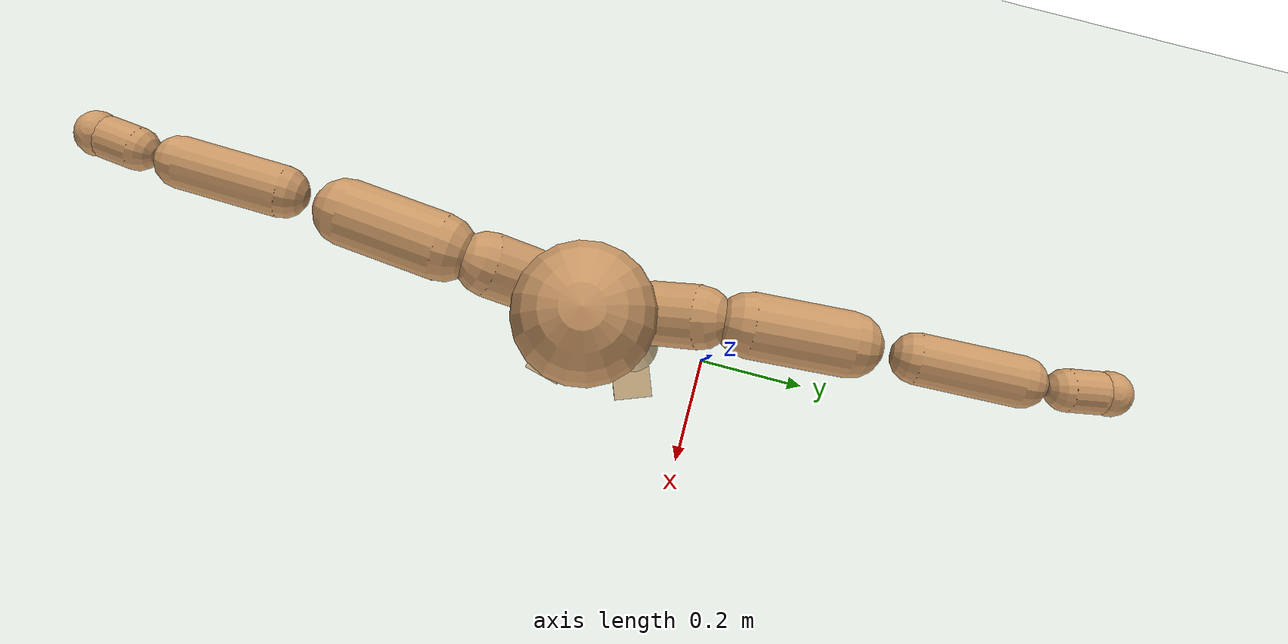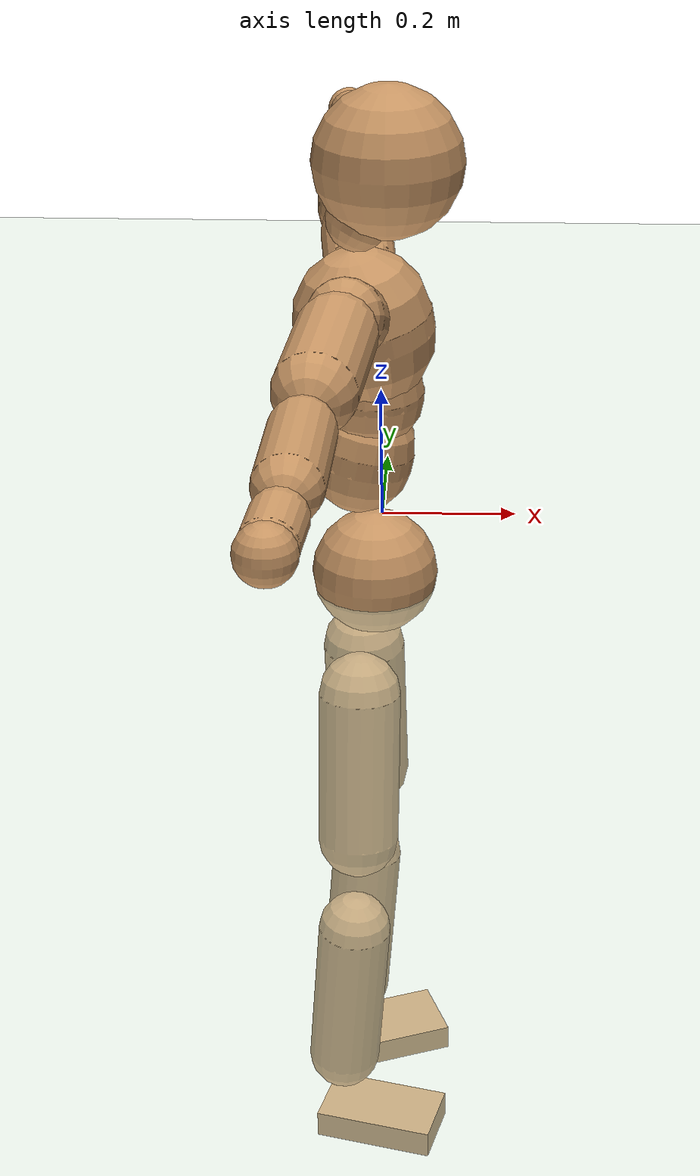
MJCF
<mujoco model="humanoid">
  <compiler coordinate="local"/>
  <default>
    <joint damping="0.0" armature="0.01" stiffness="0.0" limited="true"/>
    <geom conaffinity="1" condim="3" contype="7" margin="0.001" rgba="0.8 0.6 .4 1"/>
  </default>
  <asset>
    <texture type="skybox" builtin="gradient" rgb1=".4 .5 .6" rgb2="0 0 0" width="100" height="100"/>
    <texture builtin="flat" height="1278" mark="cross" markrgb="1 1 1" name="texgeom" random="0.01" rgb1="0.8 0.6 0.4" rgb2="0.8 0.6 0.4" type="cube" width="127"/>
    <texture builtin="checker" height="100" name="texplane" rgb1="0 0 0" rgb2="0.8 0.8 0.8" type="2d" width="100"/>
    <material name="MatPlane" reflectance="0.5" shininess="1" specular="1" texrepeat="60 60" texture="texplane"/>
    <material name="geom" texture="texgeom" texuniform="true"/>
  </asset>
  <worldbody>
    <light cutoff="100" diffuse="1 1 1" dir="-0 0 -1.3" directional="true" exponent="1" pos="0 0 1.3" specular=".1 .1 .1"/>
    <geom conaffinity="1" condim="3" name="floor" pos="0 0 0" rgba="0.8 0.9 0.8 1" size="100 100 .2" type="plane" material="MatPlane"/>
    <body name="Pelvis" pos="-0.0004 -0.2235 0.0191">
      <freejoint name="Pelvis"/>
      <geom type="sphere" contype="1" conaffinity="1" density="500" size="0.0888" pos="0.0000 0.0000 0.0000" name="Pelvis"/>
      <body name="L_Hip" pos="-0.0222 0.0561 -0.0787">
        <joint name="L_Hip_x" type="hinge" pos="0 0 0" axis="1 0 0" stiffness="800" damping="80" armature="0.02" range="-180.0000 180.0000"/>
        <joint name="L_Hip_y" type="hinge" pos="0 0 0" axis="0 1 0" stiffness="800" damping="80" armature="0.02" range="-180.0000 180.0000"/>
        <joint name="L_Hip_z" type="hinge" pos="0 0 0" axis="0 0 1" stiffness="800" damping="80" armature="0.02" range="-180.0000 180.0000"/>
        <geom type="capsule" contype="1" conaffinity="1" density="500" fromto="0.0014 0.0093 -0.0780 0.0057 0.0371 -0.3119" size="0.0592" name="L_Hip"/>
        <body name="L_Knee" pos="0.0071 0.0464 -0.3899">
          <joint name="L_Knee_x" type="hinge" pos="0 0 0" axis="1 0 0" stiffness="800" damping="80" armature="0.02" range="-180.0000 180.0000"/>
          <joint name="L_Knee_y" type="hinge" pos="0 0 0" axis="0 1 0" stiffness="800" damping="80" armature="0.02" range="-180.0000 180.0000"/>
          <joint name="L_Knee_z" type="hinge" pos="0 0 0" axis="0 0 1" stiffness="800" damping="80" armature="0.02" range="-180.0000 180.0000"/>
          <geom type="capsule" contype="1" conaffinity="1" density="500" fromto="-0.0070 -0.0026 -0.0840 -0.0278 -0.0106 -0.3358" size="0.0529" name="L_Knee"/>
          <body name="L_Ankle" pos="-0.0348 -0.0132 -0.4198">
            <joint name="L_Ankle_x" type="hinge" pos="0 0 0" axis="1 0 0" stiffness="800" damping="80" armature="0.02" range="-180.0000 180.0000"/>
            <joint name="L_Ankle_y" type="hinge" pos="0 0 0" axis="0 1 0" stiffness="800" damping="80" armature="0.02" range="-180.0000 180.0000"/>
            <joint name="L_Ankle_z" type="hinge" pos="0 0 0" axis="0 0 1" stiffness="800" damping="80" armature="0.02" range="-180.0000 180.0000"/>
            <geom type="box" contype="1" conaffinity="1" density="500" pos="0.0595 0.0224 -0.0298" size="0.0854 0.0525 0.0202" quat="0.9838 0.0000 0.0000 0.1792" name="L_Ankle"/>
            <body name="L_Toe" pos="0.119 0.0448 -0.0596">
              <joint name="L_Toe_x" type="hinge" pos="0 0 0" axis="1 0 0" stiffness="500" damping="50" armature="0.02" range="-180.0000 180.0000"/>
              <joint name="L_Toe_y" type="hinge" pos="0 0 0" axis="0 1 0" stiffness="500" damping="50" armature="0.02" range="-180.0000 180.0000"/>
              <joint name="L_Toe_z" type="hinge" pos="0 0 0" axis="0 0 1" stiffness="500" damping="50" armature="0.02" range="-180.0000 180.0000"/>
              <geom type="box" contype="1" conaffinity="1" density="500" pos="0.0000 0.0000 0.0303" size="0.001 0.0025 0.001" quat="0.9830 0.0000 0.0000 0.1836" name="L_Toe"/>
            </body>
          </body>
        </body>
      </body>
      <body name="R_Hip" pos="-0.0194 -0.0579 -0.0861">
        <joint name="R_Hip_x" type="hinge" pos="0 0 0" axis="1 0 0" stiffness="800" damping="80" armature="0.02" range="-180.0000 180.0000"/>
        <joint name="R_Hip_y" type="hinge" pos="0 0 0" axis="0 1 0" stiffness="800" damping="80" armature="0.02" range="-180.0000 180.0000"/>
        <joint name="R_Hip_z" type="hinge" pos="0 0 0" axis="0 0 1" stiffness="800" damping="80" armature="0.02" range="-180.0000 180.0000"/>
        <geom type="capsule" contype="1" conaffinity="1" density="500" fromto="-0.0010 -0.0091 -0.0768 -0.0041 -0.0365 -0.3070" size="0.0585" name="R_Hip"/>
        <body name="R_Knee" pos="-0.0051 -0.0456 -0.3838">
          <joint name="R_Knee_x" type="hinge" pos="0 0 0" axis="1 0 0" stiffness="800" damping="80" armature="0.02" range="-180.0000 180.0000"/>
          <joint name="R_Knee_y" type="hinge" pos="0 0 0" axis="0 1 0" stiffness="800" damping="80" armature="0.02" range="-180.0000 180.0000"/>
          <joint name="R_Knee_z" type="hinge" pos="0 0 0" axis="0 0 1" stiffness="800" damping="80" armature="0.02" range="-180.0000 180.0000"/>
          <geom type="capsule" contype="1" conaffinity="1" density="500" fromto="-0.0064 0.0036 -0.0825 -0.0256 0.0144 -0.3300" size="0.0534" name="R_Knee"/>
          <body name="R_Ankle" pos="-0.0321 0.018 -0.4125">
            <joint name="R_Ankle_x" type="hinge" pos="0 0 0" axis="1 0 0" stiffness="800" damping="80" armature="0.02" range="-180.0000 180.0000"/>
            <joint name="R_Ankle_y" type="hinge" pos="0 0 0" axis="0 1 0" stiffness="800" damping="80" armature="0.02" range="-180.0000 180.0000"/>
            <joint name="R_Ankle_z" type="hinge" pos="0 0 0" axis="0 0 1" stiffness="800" damping="80" armature="0.02" range="-180.0000 180.0000"/>
            <geom type="box" contype="1" conaffinity="1" density="500" pos="0.0638 -0.0162 -0.0313" size="0.0894 0.05 0.0214" quat="0.9923 0.0000 0.0000 -0.1237" name="R_Ankle"/>
            <body name="R_Toe" pos="0.1276 -0.0323 -0.0625">
              <joint name="R_Toe_x" type="hinge" pos="0 0 0" axis="1 0 0" stiffness="500" damping="50" armature="0.02" range="-180.0000 180.0000"/>
              <joint name="R_Toe_y" type="hinge" pos="0 0 0" axis="0 1 0" stiffness="500" damping="50" armature="0.02" range="-180.0000 180.0000"/>
              <joint name="R_Toe_z" type="hinge" pos="0 0 0" axis="0 0 1" stiffness="500" damping="50" armature="0.02" range="-180.0000 180.0000"/>
              <geom type="box" contype="1" conaffinity="1" density="500" pos="0.0000 0.0000 0.0321" size="0.001 0.0025 0.0011" quat="0.9934 0.0000 0.0000 -0.1146" name="R_Toe"/>
            </body>
          </body>
        </body>
      </body>
      <body name="Torso" pos="-0.0299 0.0042 0.1153">
        <joint name="Torso_x" type="hinge" pos="0 0 0" axis="1 0 0" stiffness="1000" damping="100" armature="0.02" range="-180.0000 180.0000"/>
        <joint name="Torso_y" type="hinge" pos="0 0 0" axis="0 1 0" stiffness="1000" damping="100" armature="0.02" range="-180.0000 180.0000"/>
        <joint name="Torso_z" type="hinge" pos="0 0 0" axis="0 0 1" stiffness="1000" damping="100" armature="0.02" range="-180.0000 180.0000"/>
        <geom type="capsule" contype="1" conaffinity="1" density="500" fromto="0.0166 0.0021 0.0778 0.0110 0.0014 0.0518" size="0.0712" name="Torso"/>
        <body name="Spine" pos="0.0276 0.0034 0.1296">
          <joint name="Spine_x" type="hinge" pos="0 0 0" axis="1 0 0" stiffness="1000" damping="100" armature="0.02" range="-180.0000 180.0000"/>
          <joint name="Spine_y" type="hinge" pos="0 0 0" axis="0 1 0" stiffness="1000" damping="100" armature="0.02" range="-180.0000 180.0000"/>
          <joint name="Spine_z" type="hinge" pos="0 0 0" axis="0 0 1" stiffness="1000" damping="100" armature="0.02" range="-180.0000 180.0000"/>
          <geom type="capsule" contype="1" conaffinity="1" density="500" fromto="0.0009 -0.0014 0.0316 0.0006 -0.0009 0.0211" size="0.0714" name="Spine"/>
          <body name="Chest" pos="0.0015 -0.0024 0.0527">
            <joint name="Chest_x" type="hinge" pos="0 0 0" axis="1 0 0" stiffness="1000" damping="100" armature="0.02" range="-180.0000 180.0000"/>
            <joint name="Chest_y" type="hinge" pos="0 0 0" axis="0 1 0" stiffness="1000" damping="100" armature="0.02" range="-180.0000 180.0000"/>
            <joint name="Chest_z" type="hinge" pos="0 0 0" axis="0 0 1" stiffness="1000" damping="100" armature="0.02" range="-180.0000 180.0000"/>
            <geom type="capsule" contype="1" conaffinity="1" density="500" fromto="-0.0130 -0.0052 0.0844 -0.0086 -0.0034 0.0563" size="0.095" name="Chest"/>
            <body name="Neck" pos="-0.0269 -0.0136 0.2045">
              <joint name="Neck_x" type="hinge" pos="0 0 0" axis="1 0 0" stiffness="500" damping="50" armature="0.02" range="-180.0000 180.0000"/>
              <joint name="Neck_y" type="hinge" pos="0 0 0" axis="0 1 0" stiffness="500" damping="50" armature="0.02" range="-180.0000 180.0000"/>
              <joint name="Neck_z" type="hinge" pos="0 0 0" axis="0 0 1" stiffness="500" damping="50" armature="0.02" range="-180.0000 180.0000"/>
              <geom type="capsule" contype="1" conaffinity="1" density="500" fromto="0.0099 0.0020 0.0187 0.0398 0.0078 0.0746" size="0.0434" name="Neck"/>
              <body name="Head" pos="0.0497 0.0098 0.0933">
                <joint name="Head_x" type="hinge" pos="0 0 0" axis="1 0 0" stiffness="500" damping="50" armature="0.02" range="-180.0000 180.0000"/>
                <joint name="Head_y" type="hinge" pos="0 0 0" axis="0 1 0" stiffness="500" damping="50" armature="0.02" range="-180.0000 180.0000"/>
                <joint name="Head_z" type="hinge" pos="0 0 0" axis="0 0 1" stiffness="500" damping="50" armature="0.02" range="-180.0000 180.0000"/>
                <geom type="sphere" contype="1" conaffinity="1" density="500" size="0.1013" pos="0.0000 0.0000 0.0000" name="Head"/>
              </body>
            </body>
            <body name="L_Thorax" pos="-0.0168 0.0679 0.1091">
              <joint name="L_Thorax_x" type="hinge" pos="0 0 0" axis="1 0 0" stiffness="500" damping="50" armature="0.02" range="-180.0000 180.0000"/>
              <joint name="L_Thorax_y" type="hinge" pos="0 0 0" axis="0 1 0" stiffness="500" damping="50" armature="0.02" range="-180.0000 180.0000"/>
              <joint name="L_Thorax_z" type="hinge" pos="0 0 0" axis="0 0 1" stiffness="500" damping="50" armature="0.02" range="-180.0000 180.0000"/>
              <geom type="capsule" contype="1" conaffinity="1" density="500" fromto="-0.0031 0.0235 0.0091 -0.0123 0.0939 0.0365" size="0.0498" name="L_Thorax"/>
              <body name="L_Shoulder" pos="-0.0153 0.1174 0.0456">
                <joint name="L_Shoulder_x" type="hinge" pos="0 0 0" axis="1 0 0" stiffness="500" damping="50" armature="0.02" range="-720.0000 720.0000"/>
                <joint name="L_Shoulder_y" type="hinge" pos="0 0 0" axis="0 1 0" stiffness="500" damping="50" armature="0.02" range="-720.0000 720.0000"/>
                <joint name="L_Shoulder_z" type="hinge" pos="0 0 0" axis="0 0 1" stiffness="500" damping="50" armature="0.02" range="-720.0000 720.0000"/>
                <geom type="capsule" contype="1" conaffinity="1" density="500" fromto="-0.0037 0.0511 -0.0034 -0.0149 0.2043 -0.0135" size="0.0514" name="L_Shoulder"/>
                <body name="L_Elbow" pos="-0.0186 0.2554 -0.0169">
                  <joint name="L_Elbow_x" type="hinge" pos="0 0 0" axis="1 0 0" stiffness="500" damping="50" armature="0.02" range="-720.0000 720.0000"/>
                  <joint name="L_Elbow_y" type="hinge" pos="0 0 0" axis="0 1 0" stiffness="500" damping="50" armature="0.02" range="-720.0000 720.0000"/>
                  <joint name="L_Elbow_z" type="hinge" pos="0 0 0" axis="0 0 1" stiffness="500" damping="50" armature="0.02" range="-720.0000 720.0000"/>
                  <geom type="capsule" contype="1" conaffinity="1" density="500" fromto="-0.0017 0.0520 0.0022 -0.0069 0.2082 0.0089" size="0.04" name="L_Elbow"/>
                  <body name="L_Wrist" pos="-0.0086 0.2602 0.0111">
                    <joint name="L_Wrist_x" type="hinge" pos="0 0 0" axis="1 0 0" stiffness="300" damping="30" armature="0.02" range="-180.0000 180.0000"/>
                    <joint name="L_Wrist_y" type="hinge" pos="0 0 0" axis="0 1 0" stiffness="300" damping="30" armature="0.02" range="-180.0000 180.0000"/>
                    <joint name="L_Wrist_z" type="hinge" pos="0 0 0" axis="0 0 1" stiffness="300" damping="30" armature="0.02" range="-180.0000 180.0000"/>
                    <geom type="capsule" contype="1" conaffinity="1" density="500" fromto="-0.0031 0.0169 -0.0021 -0.0122 0.0674 -0.0082" size="0.0329" name="L_Wrist"/>
                    <body name="L_Hand" pos="-0.0153 0.0843 -0.0103">
                      <joint name="L_Hand_x" type="hinge" pos="0 0 0" axis="1 0 0" stiffness="300" damping="30" armature="0.02" range="-180.0000 180.0000"/>
                      <joint name="L_Hand_y" type="hinge" pos="0 0 0" axis="0 1 0" stiffness="300" damping="30" armature="0.02" range="-180.0000 180.0000"/>
                      <joint name="L_Hand_z" type="hinge" pos="0 0 0" axis="0 0 1" stiffness="300" damping="30" armature="0.02" range="-180.0000 180.0000"/>
                      <geom type="sphere" contype="1" conaffinity="1" density="500" size="0.0345" pos="0.0000 0.0000 0.0000" name="L_Hand"/>
                    </body>
                  </body>
                </body>
              </body>
            </body>
            <body name="R_Thorax" pos="-0.0211 -0.0801 0.1086">
              <joint name="R_Thorax_x" type="hinge" pos="0 0 0" axis="1 0 0" stiffness="500" damping="50" armature="0.02" range="-180.0000 180.0000"/>
              <joint name="R_Thorax_y" type="hinge" pos="0 0 0" axis="0 1 0" stiffness="500" damping="50" armature="0.02" range="-180.0000 180.0000"/>
              <joint name="R_Thorax_z" type="hinge" pos="0 0 0" axis="0 0 1" stiffness="500" damping="50" armature="0.02" range="-180.0000 180.0000"/>
              <geom type="capsule" contype="1" conaffinity="1" density="500" fromto="-0.0011 -0.0218 0.0096 -0.0045 -0.0873 0.0384" size="0.0505" name="R_Thorax"/>
              <body name="R_Shoulder" pos="-0.0056 -0.1091 0.0479">
                <joint name="R_Shoulder_x" type="hinge" pos="0 0 0" axis="1 0 0" stiffness="500" damping="50" armature="0.02" range="-720.0000 720.0000"/>
                <joint name="R_Shoulder_y" type="hinge" pos="0 0 0" axis="0 1 0" stiffness="500" damping="50" armature="0.02" range="-720.0000 720.0000"/>
                <joint name="R_Shoulder_z" type="hinge" pos="0 0 0" axis="0 0 1" stiffness="500" damping="50" armature="0.02" range="-720.0000 720.0000"/>
                <geom type="capsule" contype="1" conaffinity="1" density="500" fromto="-0.0053 -0.0518 -0.0037 -0.0211 -0.2073 -0.0147" size="0.0529" name="R_Shoulder"/>
                <body name="R_Elbow" pos="-0.0264 -0.2592 -0.0184">
                  <joint name="R_Elbow_x" type="hinge" pos="0 0 0" axis="1 0 0" stiffness="500" damping="50" armature="0.02" range="-720.0000 720.0000"/>
                  <joint name="R_Elbow_y" type="hinge" pos="0 0 0" axis="0 1 0" stiffness="500" damping="50" armature="0.02" range="-720.0000 720.0000"/>
                  <joint name="R_Elbow_z" type="hinge" pos="0 0 0" axis="0 0 1" stiffness="500" damping="50" armature="0.02" range="-720.0000 720.0000"/>
                  <geom type="capsule" contype="1" conaffinity="1" density="500" fromto="-0.0012 -0.0534 0.0016 -0.0049 -0.2137 0.0062" size="0.0411" name="R_Elbow"/>
                  <body name="R_Wrist" pos="-0.0061 -0.2672 0.0078">
                    <joint name="R_Wrist_x" type="hinge" pos="0 0 0" axis="1 0 0" stiffness="300" damping="30" armature="0.02" range="-180.0000 180.0000"/>
                    <joint name="R_Wrist_y" type="hinge" pos="0 0 0" axis="0 1 0" stiffness="300" damping="30" armature="0.02" range="-180.0000 180.0000"/>
                    <joint name="R_Wrist_z" type="hinge" pos="0 0 0" axis="0 0 1" stiffness="300" damping="30" armature="0.02" range="-180.0000 180.0000"/>
                    <geom type="capsule" contype="1" conaffinity="1" density="500" fromto="-0.0020 -0.0174 -0.0017 -0.0080 -0.0695 -0.0067" size="0.0338" name="R_Wrist"/>
                    <body name="R_Hand" pos="-0.01 -0.0868 -0.0084">
                      <joint name="R_Hand_x" type="hinge" pos="0 0 0" axis="1 0 0" stiffness="300" damping="30" armature="0.02" range="-180.0000 180.0000"/>
                      <joint name="R_Hand_y" type="hinge" pos="0 0 0" axis="0 1 0" stiffness="300" damping="30" armature="0.02" range="-180.0000 180.0000"/>
                      <joint name="R_Hand_z" type="hinge" pos="0 0 0" axis="0 0 1" stiffness="300" damping="30" armature="0.02" range="-180.0000 180.0000"/>
                      <geom type="sphere" contype="1" conaffinity="1" density="500" size="0.0353" pos="0.0000 0.0000 0.0000" name="R_Hand"/>
                    </body>
                  </body>
                </body>
              </body>
            </body>
          </body>
        </body>
      </body>
    </body>
  </worldbody>
  <actuator>
    <motor name="L_Hip_x" joint="L_Hip_x" gear="500"/>
    <motor name="L_Hip_y" joint="L_Hip_y" gear="500"/>
    <motor name="L_Hip_z" joint="L_Hip_z" gear="500"/>
    <motor name="L_Knee_x" joint="L_Knee_x" gear="500"/>
    <motor name="L_Knee_y" joint="L_Knee_y" gear="500"/>
    <motor name="L_Knee_z" joint="L_Knee_z" gear="500"/>
    <motor name="L_Ankle_x" joint="L_Ankle_x" gear="500"/>
    <motor name="L_Ankle_y" joint="L_Ankle_y" gear="500"/>
    <motor name="L_Ankle_z" joint="L_Ankle_z" gear="500"/>
    <motor name="L_Toe_x" joint="L_Toe_x" gear="500"/>
    <motor name="L_Toe_y" joint="L_Toe_y" gear="500"/>
    <motor name="L_Toe_z" joint="L_Toe_z" gear="500"/>
    <motor name="R_Hip_x" joint="R_Hip_x" gear="500"/>
    <motor name="R_Hip_y" joint="R_Hip_y" gear="500"/>
    <motor name="R_Hip_z" joint="R_Hip_z" gear="500"/>
    <motor name="R_Knee_x" joint="R_Knee_x" gear="500"/>
    <motor name="R_Knee_y" joint="R_Knee_y" gear="500"/>
    <motor name="R_Knee_z" joint="R_Knee_z" gear="500"/>
    <motor name="R_Ankle_x" joint="R_Ankle_x" gear="500"/>
    <motor name="R_Ankle_y" joint="R_Ankle_y" gear="500"/>
    <motor name="R_Ankle_z" joint="R_Ankle_z" gear="500"/>
    <motor name="R_Toe_x" joint="R_Toe_x" gear="500"/>
    <motor name="R_Toe_y" joint="R_Toe_y" gear="500"/>
    <motor name="R_Toe_z" joint="R_Toe_z" gear="500"/>
    <motor name="Torso_x" joint="Torso_x" gear="500"/>
    <motor name="Torso_y" joint="Torso_y" gear="500"/>
    <motor name="Torso_z" joint="Torso_z" gear="500"/>
    <motor name="Spine_x" joint="Spine_x" gear="500"/>
    <motor name="Spine_y" joint="Spine_y" gear="500"/>
    <motor name="Spine_z" joint="Spine_z" gear="500"/>
    <motor name="Chest_x" joint="Chest_x" gear="500"/>
    <motor name="Chest_y" joint="Chest_y" gear="500"/>
    <motor name="Chest_z" joint="Chest_z" gear="500"/>
    <motor name="Neck_x" joint="Neck_x" gear="500"/>
    <motor name="Neck_y" joint="Neck_y" gear="500"/>
    <motor name="Neck_z" joint="Neck_z" gear="500"/>
    <motor name="Head_x" joint="Head_x" gear="500"/>
    <motor name="Head_y" joint="Head_y" gear="500"/>
    <motor name="Head_z" joint="Head_z" gear="500"/>
    <motor name="L_Thorax_x" joint="L_Thorax_x" gear="500"/>
    <motor name="L_Thorax_y" joint="L_Thorax_y" gear="500"/>
    <motor name="L_Thorax_z" joint="L_Thorax_z" gear="500"/>
    <motor name="L_Shoulder_x" joint="L_Shoulder_x" gear="500"/>
    <motor name="L_Shoulder_y" joint="L_Shoulder_y" gear="500"/>
    <motor name="L_Shoulder_z" joint="L_Shoulder_z" gear="500"/>
    <motor name="L_Elbow_x" joint="L_Elbow_x" gear="500"/>
    <motor name="L_Elbow_y" joint="L_Elbow_y" gear="500"/>
    <motor name="L_Elbow_z" joint="L_Elbow_z" gear="500"/>
    <motor name="L_Wrist_x" joint="L_Wrist_x" gear="500"/>
    <motor name="L_Wrist_y" joint="L_Wrist_y" gear="500"/>
    <motor name="L_Wrist_z" joint="L_Wrist_z" gear="500"/>
    <motor name="L_Hand_x" joint="L_Hand_x" gear="500"/>
    <motor name="L_Hand_y" joint="L_Hand_y" gear="500"/>
    <motor name="L_Hand_z" joint="L_Hand_z" gear="500"/>
    <motor name="R_Thorax_x" joint="R_Thorax_x" gear="500"/>
    <motor name="R_Thorax_y" joint="R_Thorax_y" gear="500"/>
    <motor name="R_Thorax_z" joint="R_Thorax_z" gear="500"/>
    <motor name="R_Shoulder_x" joint="R_Shoulder_x" gear="500"/>
    <motor name="R_Shoulder_y" joint="R_Shoulder_y" gear="500"/>
    <motor name="R_Shoulder_z" joint="R_Shoulder_z" gear="500"/>
    <motor name="R_Elbow_x" joint="R_Elbow_x" gear="500"/>
    <motor name="R_Elbow_y" joint="R_Elbow_y" gear="500"/>
    <motor name="R_Elbow_z" joint="R_Elbow_z" gear="500"/>
    <motor name="R_Wrist_x" joint="R_Wrist_x" gear="500"/>
    <motor name="R_Wrist_y" joint="R_Wrist_y" gear="500"/>
    <motor name="R_Wrist_z" joint="R_Wrist_z" gear="500"/>
    <motor name="R_Hand_x" joint="R_Hand_x" gear="500"/>
    <motor name="R_Hand_y" joint="R_Hand_y" gear="500"/>
    <motor name="R_Hand_z" joint="R_Hand_z" gear="500"/>
  </actuator>
  <contact>
    <exclude body1="Torso" body2="Chest"/>
    <exclude body1="Head" body2="Chest"/>
    <exclude body1="R_Knee" body2="R_Toe"/>
    <exclude body1="R_Knee" body2="L_Ankle"/>
    <exclude body1="R_Knee" body2="L_Toe"/>
    <exclude body1="L_Knee" body2="L_Toe"/>
    <exclude body1="L_Knee" body2="R_Ankle"/>
    <exclude body1="L_Knee" body2="R_Toe"/>
    <exclude body1="L_Shoulder" body2="Chest"/>
    <exclude body1="R_Shoulder" body2="Chest"/>
  </contact>
  <sensor/>
  <size njmax="700" nconmax="700"/>
</mujoco>
